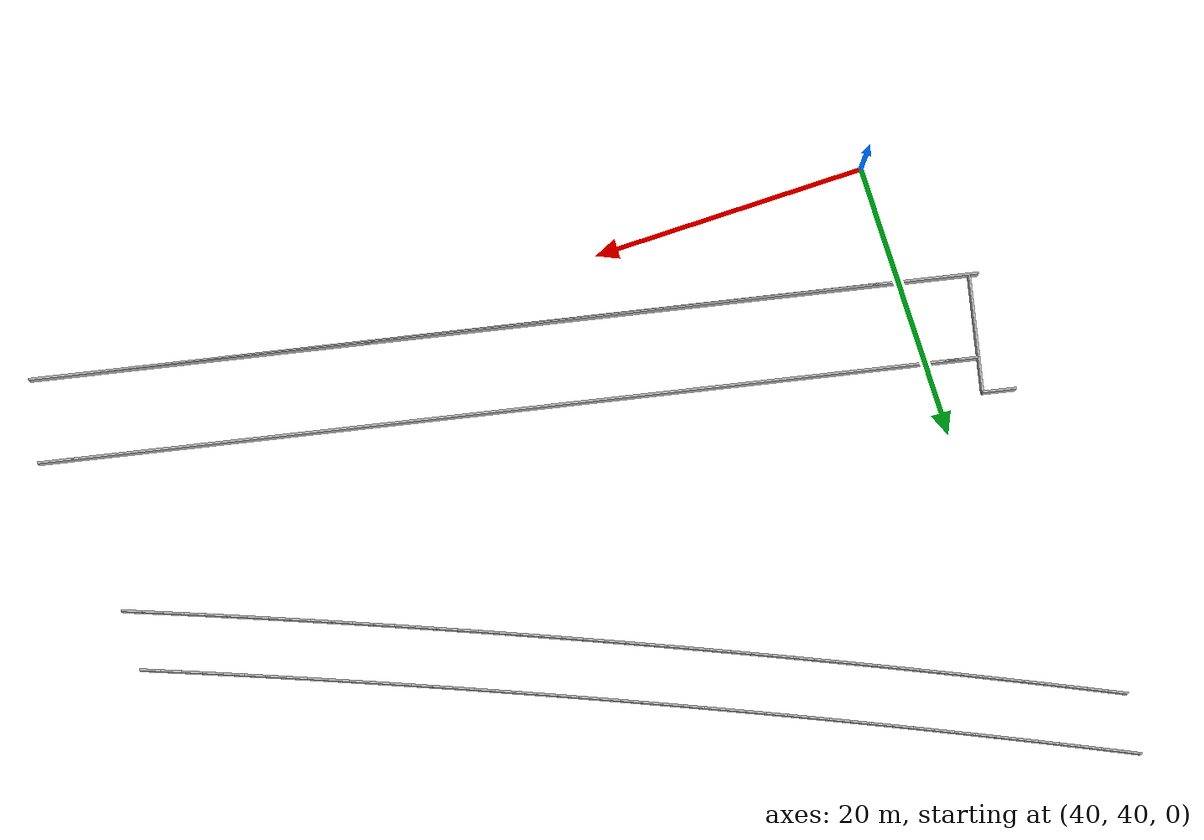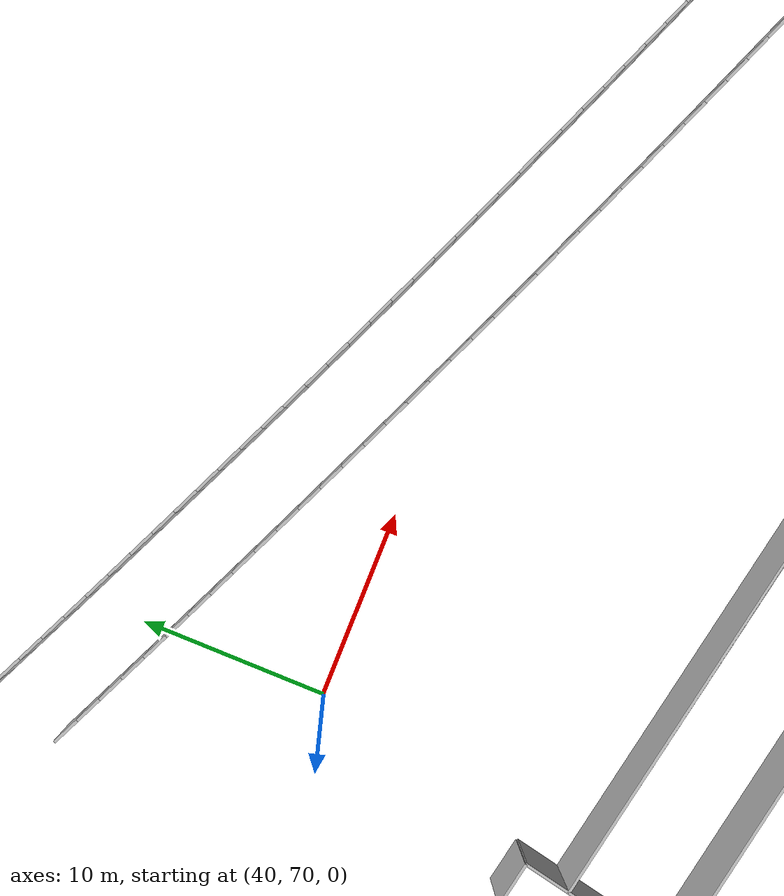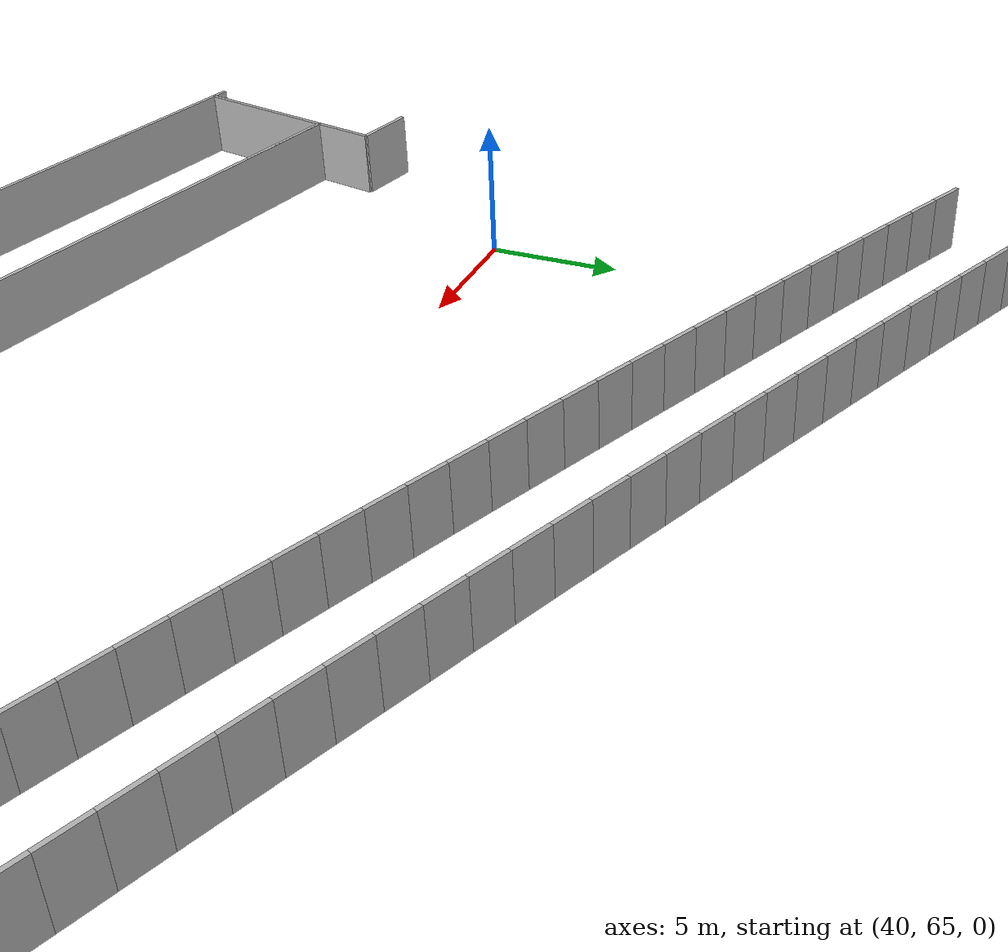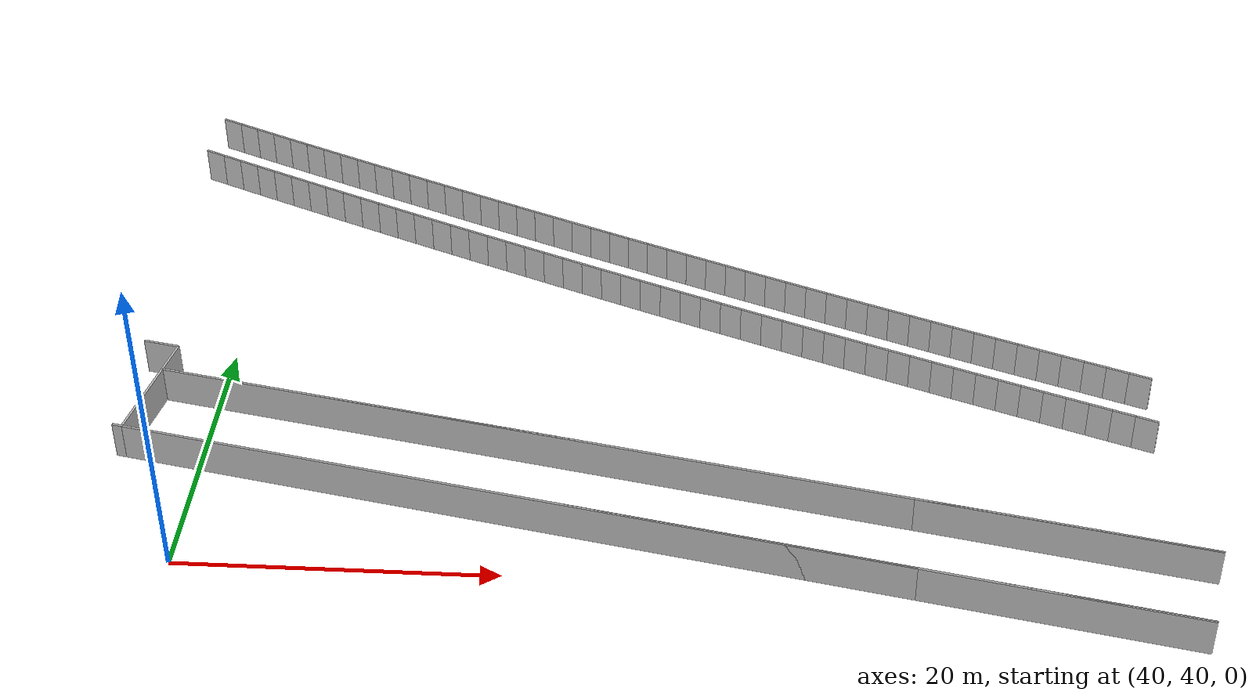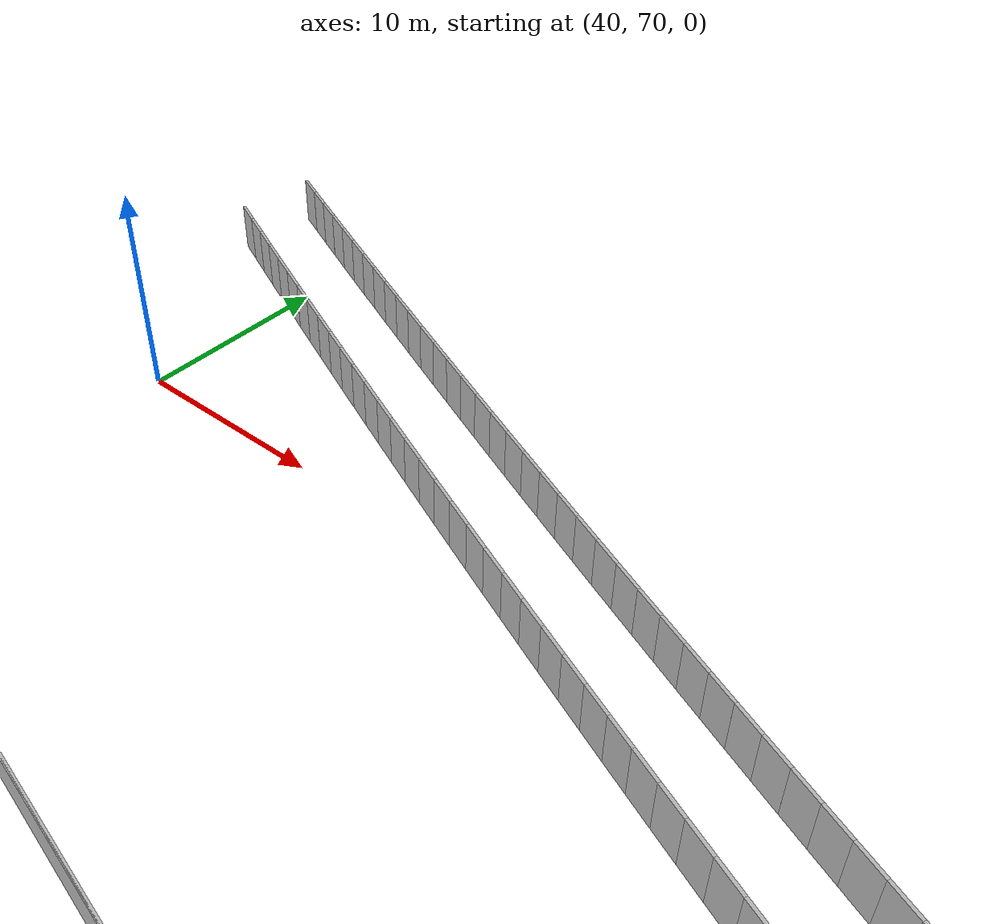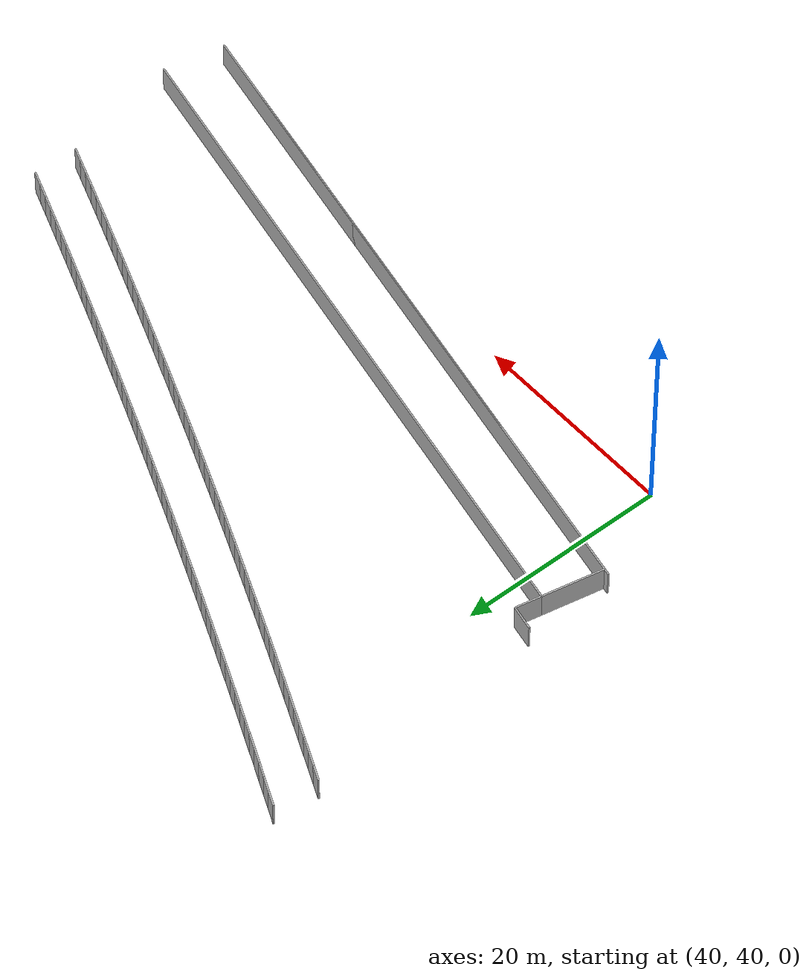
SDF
<sdf version="1.6">
 <model name="sps_0702">
  <static>1</static>
  <allow_auto_disable>0</allow_auto_disable>
  <link name="Wall22">
   <collision name="collision"><geometry><box><size>2.40359 0.15 2.5</size></box></geometry></collision>
   <visual name="visual">
    <geometry><box><size>2.40359 0.15 2.5</size></box></geometry>
    <transparency>0.0</transparency>
   </visual>
   <pose>35.6465 58.1709 1.25 0 -0 2.9385</pose>
  </link>
  <link name="Wall24">
   <collision name="collision"><geometry><box><size>17.1475 0.15 2.5</size></box></geometry></collision>
   <visual name="visual">
    <geometry><box><size>17.1475 0.15 2.5</size></box></geometry>
    <transparency>0.0</transparency>
   </visual>
   <pose>92.8679 37.7551 1.25 0 -0 2.93901</pose>
  </link>
  <link name="Wall25">
   <collision name="collision"><geometry><box><size>51.0438 0.15 2.5</size></box></geometry></collision>
   <visual name="visual">
    <geometry><box><size>51.0438 0.15 2.5</size></box></geometry>
    <transparency>0.0</transparency>
   </visual>
   <pose>59.4694 44.6151 1.25 0 -0 2.93901</pose>
  </link>
  <link name="Wall525">
   <collision name="collision"><geometry><box><size>2.50024 0.15 2.5</size></box></geometry></collision>
   <visual name="visual">
    <geometry><box><size>2.50024 0.15 2.5</size></box></geometry>
    <transparency>0.0</transparency>
   </visual>
   <pose>36.5713 56.7041 1.25 0 -0 1.36759</pose>
  </link>
  <link name="Wall609">
   <collision name="collision"><geometry><box><size>18.3831 0.15 2.5</size></box></geometry></collision>
   <visual name="visual">
    <geometry><box><size>18.3831 0.15 2.5</size></box></geometry>
    <transparency>0.0</transparency>
   </visual>
   <pose>93.4734 43.7539 1.25 0 -0 2.93924</pose>
  </link>
  <link name="Wall610">
   <collision name="collision"><geometry><box><size>49.1533 0.15 2.5</size></box></geometry></collision>
   <visual name="visual">
    <geometry><box><size>49.1533 0.15 2.5</size></box></geometry>
    <transparency>0.0</transparency>
   </visual>
   <pose>60.3942 50.5404 1.25 0 -0 2.93924</pose>
  </link>
  <link name="Wall1000">
   <collision name="collision"><geometry><box><size>67.5356 0.15 2.5</size></box></geometry></collision>
   <visual name="visual">
    <geometry><box><size>67.5356 0.15 2.5</size></box></geometry>
    <transparency>0.0</transparency>
   </visual>
   <pose>68.189 42.824 1.25 0 -0 2.93902</pose>
  </link>
  <link name="Wall1001">
   <collision name="collision"><geometry><box><size>5.98487 0.15 2.5</size></box></geometry></collision>
   <visual name="visual">
    <geometry><box><size>5.98487 0.15 2.5</size></box></geometry>
    <transparency>0.0</transparency>
   </visual>
   <pose>35.7154 52.5488 1.25 0 -0 1.36766</pose>
  </link>
  <link name="Wall1002">
   <collision name="collision"><geometry><box><size>67.5363 0.15 2.5</size></box></geometry></collision>
   <visual name="visual">
    <geometry><box><size>67.5363 0.15 2.5</size></box></geometry>
    <transparency>0.0</transparency>
   </visual>
   <pose>69.3982 48.6932 1.25 0 0 -0.202351</pose>
  </link>
  <link name="Wall8775">
   <collision name="collision"><geometry><box><size>1.49881 0.15 2.5</size></box></geometry></collision>
   <visual name="visual">
    <geometry><box><size>1.49881 0.15 2.5</size></box></geometry>
    <transparency>0.0</transparency>
   </visual>
   <pose>34.3608 81.2425 1.25 0 0 -0.433503</pose>
  </link>
  <link name="Wall8776">
   <collision name="collision"><geometry><box><size>1.49901 0.15 2.5</size></box></geometry></collision>
   <visual name="visual">
    <geometry><box><size>1.49901 0.15 2.5</size></box></geometry>
    <transparency>0.0</transparency>
   </visual>
   <pose>35.7215 80.6138 1.25 0 0 -0.43214</pose>
  </link>
  <link name="Wall8777">
   <collision name="collision"><geometry><box><size>1.49887 0.15 2.5</size></box></geometry></collision>
   <visual name="visual">
    <geometry><box><size>1.49887 0.15 2.5</size></box></geometry>
    <transparency>0.0</transparency>
   </visual>
   <pose>37.0832 79.9872 1.25 0 0 -0.430388</pose>
  </link>
  <link name="Wall8778">
   <collision name="collision"><geometry><box><size>1.49893 0.15 2.5</size></box></geometry></collision>
   <visual name="visual">
    <geometry><box><size>1.49893 0.15 2.5</size></box></geometry>
    <transparency>0.0</transparency>
   </visual>
   <pose>38.4459 79.3629 1.25 0 0 -0.428804</pose>
  </link>
  <link name="Wall8779">
   <collision name="collision"><geometry><box><size>1.49898 0.15 2.5</size></box></geometry></collision>
   <visual name="visual">
    <geometry><box><size>1.49898 0.15 2.5</size></box></geometry>
    <transparency>0.0</transparency>
   </visual>
   <pose>39.8096 78.7407 1.25 0 0 -0.427312</pose>
  </link>
  <link name="Wall8780">
   <collision name="collision"><geometry><box><size>1.49894 0.15 2.5</size></box></geometry></collision>
   <visual name="visual">
    <geometry><box><size>1.49894 0.15 2.5</size></box></geometry>
    <transparency>0.0</transparency>
   </visual>
   <pose>41.1742 78.1206 1.25 0 0 -0.42567</pose>
  </link>
  <link name="Wall8781">
   <collision name="collision"><geometry><box><size>1.49908 0.15 2.5</size></box></geometry></collision>
   <visual name="visual">
    <geometry><box><size>1.49908 0.15 2.5</size></box></geometry>
    <transparency>0.0</transparency>
   </visual>
   <pose>42.5399 77.5026 1.25 0 0 -0.424198</pose>
  </link>
  <link name="Wall8782">
   <collision name="collision"><geometry><box><size>1.49899 0.15 2.5</size></box></geometry></collision>
   <visual name="visual">
    <geometry><box><size>1.49899 0.15 2.5</size></box></geometry>
    <transparency>0.0</transparency>
   </visual>
   <pose>43.9066 76.8868 1.25 0 0 -0.422483</pose>
  </link>
  <link name="Wall8783">
   <collision name="collision"><geometry><box><size>1.49894 0.15 2.5</size></box></geometry></collision>
   <visual name="visual">
    <geometry><box><size>1.49894 0.15 2.5</size></box></geometry>
    <transparency>0.0</transparency>
   </visual>
   <pose>45.2743 76.2732 1.25 0 0 -0.421023</pose>
  </link>
  <link name="Wall8784">
   <collision name="collision"><geometry><box><size>1.49878 0.15 2.5</size></box></geometry></collision>
   <visual name="visual">
    <geometry><box><size>1.49878 0.15 2.5</size></box></geometry>
    <transparency>0.0</transparency>
   </visual>
   <pose>46.6428 75.6618 1.25 0 0 -0.419287</pose>
  </link>
  <link name="Wall8785">
   <collision name="collision"><geometry><box><size>1.49894 0.15 2.5</size></box></geometry></collision>
   <visual name="visual">
    <geometry><box><size>1.49894 0.15 2.5</size></box></geometry>
    <transparency>0.0</transparency>
   </visual>
   <pose>48.0122 75.0526 1.25 0 0 -0.417815</pose>
  </link>
  <link name="Wall8786">
   <collision name="collision"><geometry><box><size>1.49883 0.15 2.5</size></box></geometry></collision>
   <visual name="visual">
    <geometry><box><size>1.49883 0.15 2.5</size></box></geometry>
    <transparency>0.0</transparency>
   </visual>
   <pose>49.3827 74.4455 1.25 0 0 -0.416244</pose>
  </link>
  <link name="Wall8787">
   <collision name="collision"><geometry><box><size>1.49908 0.15 2.5</size></box></geometry></collision>
   <visual name="visual">
    <geometry><box><size>1.49908 0.15 2.5</size></box></geometry>
    <transparency>0.0</transparency>
   </visual>
   <pose>50.7541 73.8405 1.25 0 0 -0.414702</pose>
  </link>
  <link name="Wall8788">
   <collision name="collision"><geometry><box><size>1.49899 0.15 2.5</size></box></geometry></collision>
   <visual name="visual">
    <geometry><box><size>1.49899 0.15 2.5</size></box></geometry>
    <transparency>0.0</transparency>
   </visual>
   <pose>52.1266 73.2377 1.25 0 0 -0.412949</pose>
  </link>
  <link name="Wall8789">
   <collision name="collision"><geometry><box><size>1.49893 0.15 2.5</size></box></geometry></collision>
   <visual name="visual">
    <geometry><box><size>1.49893 0.15 2.5</size></box></geometry>
    <transparency>0.0</transparency>
   </visual>
   <pose>53.5 72.6371 1.25 0 0 -0.411543</pose>
  </link>
  <link name="Wall8790">
   <collision name="collision"><geometry><box><size>1.49901 0.15 2.5</size></box></geometry></collision>
   <visual name="visual">
    <geometry><box><size>1.49901 0.15 2.5</size></box></geometry>
    <transparency>0.0</transparency>
   </visual>
   <pose>54.8743 72.0386 1.25 0 0 -0.409923</pose>
  </link>
  <link name="Wall8791">
   <collision name="collision"><geometry><box><size>1.49903 0.15 2.5</size></box></geometry></collision>
   <visual name="visual">
    <geometry><box><size>1.49903 0.15 2.5</size></box></geometry>
    <transparency>0.0</transparency>
   </visual>
   <pose>56.2496 71.4423 1.25 0 0 -0.408319</pose>
  </link>
  <link name="Wall8792">
   <collision name="collision"><geometry><box><size>1.49886 0.15 2.5</size></box></geometry></collision>
   <visual name="visual">
    <geometry><box><size>1.49886 0.15 2.5</size></box></geometry>
    <transparency>0.0</transparency>
   </visual>
   <pose>57.6258 70.8482 1.25 0 0 -0.406726</pose>
  </link>
  <link name="Wall8793">
   <collision name="collision"><geometry><box><size>1.49897 0.15 2.5</size></box></geometry></collision>
   <visual name="visual">
    <geometry><box><size>1.49897 0.15 2.5</size></box></geometry>
    <transparency>0.0</transparency>
   </visual>
   <pose>59.0029 70.2563 1.25 0 0 -0.405143</pose>
  </link>
  <link name="Wall8794">
   <collision name="collision"><geometry><box><size>1.49878 0.15 2.5</size></box></geometry></collision>
   <visual name="visual">
    <geometry><box><size>1.49878 0.15 2.5</size></box></geometry>
    <transparency>0.0</transparency>
   </visual>
   <pose>60.3809 69.6666 1.25 0 0 -0.403603</pose>
  </link>
  <link name="Wall8795">
   <collision name="collision"><geometry><box><size>1.49891 0.15 2.5</size></box></geometry></collision>
   <visual name="visual">
    <geometry><box><size>1.49891 0.15 2.5</size></box></geometry>
    <transparency>0.0</transparency>
   </visual>
   <pose>61.7598 69.0791 1.25 0 0 -0.40193</pose>
  </link>
  <link name="Wall8796">
   <collision name="collision"><geometry><box><size>1.49899 0.15 2.5</size></box></geometry></collision>
   <visual name="visual">
    <geometry><box><size>1.49899 0.15 2.5</size></box></geometry>
    <transparency>0.0</transparency>
   </visual>
   <pose>63.1397 68.4937 1.25 0 0 -0.400492</pose>
  </link>
  <link name="Wall8797">
   <collision name="collision"><geometry><box><size>1.49899 0.15 2.5</size></box></geometry></collision>
   <visual name="visual">
    <geometry><box><size>1.49899 0.15 2.5</size></box></geometry>
    <transparency>0.0</transparency>
   </visual>
   <pose>64.5206 67.9105 1.25 0 0 -0.398722</pose>
  </link>
  <link name="Wall8798">
   <collision name="collision"><geometry><box><size>1.49897 0.15 2.5</size></box></geometry></collision>
   <visual name="visual">
    <geometry><box><size>1.49897 0.15 2.5</size></box></geometry>
    <transparency>0.0</transparency>
   </visual>
   <pose>65.9024 67.3295 1.25 0 0 -0.397316</pose>
  </link>
  <link name="Wall8799">
   <collision name="collision"><geometry><box><size>1.49895 0.15 2.5</size></box></geometry></collision>
   <visual name="visual">
    <geometry><box><size>1.49895 0.15 2.5</size></box></geometry>
    <transparency>0.0</transparency>
   </visual>
   <pose>67.2851 66.7507 1.25 0 0 -0.395599</pose>
  </link>
  <link name="Wall8800">
   <collision name="collision"><geometry><box><size>1.49901 0.15 2.5</size></box></geometry></collision>
   <visual name="visual">
    <geometry><box><size>1.49901 0.15 2.5</size></box></geometry>
    <transparency>0.0</transparency>
   </visual>
   <pose>68.6687 66.174 1.25 0 0 -0.394215</pose>
  </link>
  <link name="Wall8801">
   <collision name="collision"><geometry><box><size>1.4989 0.15 2.5</size></box></geometry></collision>
   <visual name="visual">
    <geometry><box><size>1.4989 0.15 2.5</size></box></geometry>
    <transparency>0.0</transparency>
   </visual>
   <pose>70.0532 65.5995 1.25 0 0 -0.392439</pose>
  </link>
  <link name="Wall8802">
   <collision name="collision"><geometry><box><size>1.49899 0.15 2.5</size></box></geometry></collision>
   <visual name="visual">
    <geometry><box><size>1.49899 0.15 2.5</size></box></geometry>
    <transparency>0.0</transparency>
   </visual>
   <pose>71.4385 65.0272 1.25 0 0 -0.391092</pose>
  </link>
  <link name="Wall8803">
   <collision name="collision"><geometry><box><size>1.49895 0.15 2.5</size></box></geometry></collision>
   <visual name="visual">
    <geometry><box><size>1.49895 0.15 2.5</size></box></geometry>
    <transparency>0.0</transparency>
   </visual>
   <pose>72.8249 64.4571 1.25 0 0 -0.38921</pose>
  </link>
  <link name="Wall8804">
   <collision name="collision"><geometry><box><size>1.49886 0.15 2.5</size></box></geometry></collision>
   <visual name="visual">
    <geometry><box><size>1.49886 0.15 2.5</size></box></geometry>
    <transparency>0.0</transparency>
   </visual>
   <pose>74.2121 63.8893 1.25 0 0 -0.387781</pose>
  </link>
  <link name="Wall8805">
   <collision name="collision"><geometry><box><size>1.49902 0.15 2.5</size></box></geometry></collision>
   <visual name="visual">
    <geometry><box><size>1.49902 0.15 2.5</size></box></geometry>
    <transparency>0.0</transparency>
   </visual>
   <pose>75.6002 63.3236 1.25 0 0 -0.3862</pose>
  </link>
  <link name="Wall8806">
   <collision name="collision"><geometry><box><size>1.4989 0.15 2.5</size></box></geometry></collision>
   <visual name="visual">
    <geometry><box><size>1.4989 0.15 2.5</size></box></geometry>
    <transparency>0.0</transparency>
   </visual>
   <pose>76.9892 62.7601 1.25 0 0 -0.384605</pose>
  </link>
  <link name="Wall8807">
   <collision name="collision"><geometry><box><size>1.49908 0.15 2.5</size></box></geometry></collision>
   <visual name="visual">
    <geometry><box><size>1.49908 0.15 2.5</size></box></geometry>
    <transparency>0.0</transparency>
   </visual>
   <pose>78.3791 62.1987 1.25 0 0 -0.383153</pose>
  </link>
  <link name="Wall8808">
   <collision name="collision"><geometry><box><size>1.49889 0.15 2.5</size></box></geometry></collision>
   <visual name="visual">
    <geometry><box><size>1.49889 0.15 2.5</size></box></geometry>
    <transparency>0.0</transparency>
   </visual>
   <pose>79.7699 61.6396 1.25 0 0 -0.381315</pose>
  </link>
  <link name="Wall8809">
   <collision name="collision"><geometry><box><size>1.49882 0.15 2.5</size></box></geometry></collision>
   <visual name="visual">
    <geometry><box><size>1.49882 0.15 2.5</size></box></geometry>
    <transparency>0.0</transparency>
   </visual>
   <pose>81.1615 61.0828 1.25 0 0 -0.379886</pose>
  </link>
  <link name="Wall8810">
   <collision name="collision"><geometry><box><size>1.49897 0.15 2.5</size></box></geometry></collision>
   <visual name="visual">
    <geometry><box><size>1.49897 0.15 2.5</size></box></geometry>
    <transparency>0.0</transparency>
   </visual>
   <pose>82.5539 60.5281 1.25 0 0 -0.378268</pose>
  </link>
  <link name="Wall8811">
   <collision name="collision"><geometry><box><size>1.49897 0.15 2.5</size></box></geometry></collision>
   <visual name="visual">
    <geometry><box><size>1.49897 0.15 2.5</size></box></geometry>
    <transparency>0.0</transparency>
   </visual>
   <pose>83.9473 59.9755 1.25 0 0 -0.376824</pose>
  </link>
  <link name="Wall8812">
   <collision name="collision"><geometry><box><size>1.49908 0.15 2.5</size></box></geometry></collision>
   <visual name="visual">
    <geometry><box><size>1.49908 0.15 2.5</size></box></geometry>
    <transparency>0.0</transparency>
   </visual>
   <pose>85.3417 59.4251 1.25 0 0 -0.375131</pose>
  </link>
  <link name="Wall8813">
   <collision name="collision"><geometry><box><size>1.49894 0.15 2.5</size></box></geometry></collision>
   <visual name="visual">
    <geometry><box><size>1.49894 0.15 2.5</size></box></geometry>
    <transparency>0.0</transparency>
   </visual>
   <pose>86.7369 58.877 1.25 0 0 -0.37355</pose>
  </link>
  <link name="Wall8814">
   <collision name="collision"><geometry><box><size>1.49871 0.15 2.5</size></box></geometry></collision>
   <visual name="visual">
    <geometry><box><size>1.49871 0.15 2.5</size></box></geometry>
    <transparency>0.0</transparency>
   </visual>
   <pose>88.1327 58.3311 1.25 0 0 -0.372036</pose>
  </link>
  <link name="Wall8815">
   <collision name="collision"><geometry><box><size>1.49905 0.15 2.5</size></box></geometry></collision>
   <visual name="visual">
    <geometry><box><size>1.49905 0.15 2.5</size></box></geometry>
    <transparency>0.0</transparency>
   </visual>
   <pose>89.5295 57.7874 1.25 0 0 -0.370375</pose>
  </link>
  <link name="Wall8816">
   <collision name="collision"><geometry><box><size>1.4988 0.15 2.5</size></box></geometry></collision>
   <visual name="visual">
    <geometry><box><size>1.4988 0.15 2.5</size></box></geometry>
    <transparency>0.0</transparency>
   </visual>
   <pose>90.9272 57.2459 1.25 0 0 -0.368823</pose>
  </link>
  <link name="Wall8817">
   <collision name="collision"><geometry><box><size>1.49894 0.15 2.5</size></box></geometry></collision>
   <visual name="visual">
    <geometry><box><size>1.49894 0.15 2.5</size></box></geometry>
    <transparency>0.0</transparency>
   </visual>
   <pose>92.3257 56.7066 1.25 0 0 -0.367259</pose>
  </link>
  <link name="Wall8818">
   <collision name="collision"><geometry><box><size>1.49913 0.15 2.5</size></box></geometry></collision>
   <visual name="visual">
    <geometry><box><size>1.49913 0.15 2.5</size></box></geometry>
    <transparency>0.0</transparency>
   </visual>
   <pose>93.7252 56.1695 1.25 0 0 -0.365642</pose>
  </link>
  <link name="Wall8819">
   <collision name="collision"><geometry><box><size>1.49885 0.15 2.5</size></box></geometry></collision>
   <visual name="visual">
    <geometry><box><size>1.49885 0.15 2.5</size></box></geometry>
    <transparency>0.0</transparency>
   </visual>
   <pose>95.1255 55.6346 1.25 0 0 -0.364142</pose>
  </link>
  <link name="Wall8820">
   <collision name="collision"><geometry><box><size>1.49904 0.15 2.5</size></box></geometry></collision>
   <visual name="visual">
    <geometry><box><size>1.49904 0.15 2.5</size></box></geometry>
    <transparency>0.0</transparency>
   </visual>
   <pose>96.5266 55.1019 1.25 0 0 -0.362526</pose>
  </link>
  <link name="Wall8821">
   <collision name="collision"><geometry><box><size>1.49886 0.15 2.5</size></box></geometry></collision>
   <visual name="visual">
    <geometry><box><size>1.49886 0.15 2.5</size></box></geometry>
    <transparency>0.0</transparency>
   </visual>
   <pose>97.9286 54.5716 1.25 0 0 -0.360701</pose>
  </link>
  <link name="Wall8822">
   <collision name="collision"><geometry><box><size>1.49895 0.15 2.5</size></box></geometry></collision>
   <visual name="visual">
    <geometry><box><size>1.49895 0.15 2.5</size></box></geometry>
    <transparency>0.0</transparency>
   </visual>
   <pose>99.3314 54.0435 1.25 0 0 -0.359371</pose>
  </link>
  <link name="Wall9855">
   <collision name="collision"><geometry><box><size>1.49234 0.15 2.5</size></box></geometry></collision>
   <visual name="visual">
    <geometry><box><size>1.49234 0.15 2.5</size></box></geometry>
    <transparency>0.0</transparency>
   </visual>
   <pose>34.7463 85.6277 1.25 0 0 -0.435239</pose>
  </link>
  <link name="Wall9856">
   <collision name="collision"><geometry><box><size>1.49244 0.15 2.5</size></box></geometry></collision>
   <visual name="visual">
    <geometry><box><size>1.49244 0.15 2.5</size></box></geometry>
    <transparency>0.0</transparency>
   </visual>
   <pose>36.1001 84.9996 1.25 0 0 -0.433539</pose>
  </link>
  <link name="Wall9857">
   <collision name="collision"><geometry><box><size>1.49257 0.15 2.5</size></box></geometry></collision>
   <visual name="visual">
    <geometry><box><size>1.49257 0.15 2.5</size></box></geometry>
    <transparency>0.0</transparency>
   </visual>
   <pose>37.4549 84.3736 1.25 0 0 -0.432059</pose>
  </link>
  <link name="Wall9858">
   <collision name="collision"><geometry><box><size>1.49229 0.15 2.5</size></box></geometry></collision>
   <visual name="visual">
    <geometry><box><size>1.49229 0.15 2.5</size></box></geometry>
    <transparency>0.0</transparency>
   </visual>
   <pose>38.8108 83.7498 1.25 0 0 -0.430388</pose>
  </link>
  <link name="Wall9859">
   <collision name="collision"><geometry><box><size>1.49234 0.15 2.5</size></box></geometry></collision>
   <visual name="visual">
    <geometry><box><size>1.49234 0.15 2.5</size></box></geometry>
    <transparency>0.0</transparency>
   </visual>
   <pose>40.1674 83.1282 1.25 0 0 -0.428889</pose>
  </link>
  <link name="Wall9860">
   <collision name="collision"><geometry><box><size>1.49254 0.15 2.5</size></box></geometry></collision>
   <visual name="visual">
    <geometry><box><size>1.49254 0.15 2.5</size></box></geometry>
    <transparency>0.0</transparency>
   </visual>
   <pose>41.5252 82.5087 1.25 0 0 -0.42721</pose>
  </link>
  <link name="Wall9861">
   <collision name="collision"><geometry><box><size>1.49248 0.15 2.5</size></box></geometry></collision>
   <visual name="visual">
    <geometry><box><size>1.49248 0.15 2.5</size></box></geometry>
    <transparency>0.0</transparency>
   </visual>
   <pose>42.8841 81.8913 1.25 0 0 -0.425744</pose>
  </link>
  <link name="Wall9862">
   <collision name="collision"><geometry><box><size>1.49241 0.15 2.5</size></box></geometry></collision>
   <visual name="visual">
    <geometry><box><size>1.49241 0.15 2.5</size></box></geometry>
    <transparency>0.0</transparency>
   </visual>
   <pose>44.2438 81.276 1.25 0 0 -0.42415</pose>
  </link>
  <link name="Wall9863">
   <collision name="collision"><geometry><box><size>1.49229 0.15 2.5</size></box></geometry></collision>
   <visual name="visual">
    <geometry><box><size>1.49229 0.15 2.5</size></box></geometry>
    <transparency>0.0</transparency>
   </visual>
   <pose>45.6044 80.6629 1.25 0 0 -0.422572</pose>
  </link>
  <link name="Wall9864">
   <collision name="collision"><geometry><box><size>1.49245 0.15 2.5</size></box></geometry></collision>
   <visual name="visual">
    <geometry><box><size>1.49245 0.15 2.5</size></box></geometry>
    <transparency>0.0</transparency>
   </visual>
   <pose>46.966 80.052 1.25 0 0 -0.420911</pose>
  </link>
  <link name="Wall9865">
   <collision name="collision"><geometry><box><size>1.49228 0.15 2.5</size></box></geometry></collision>
   <visual name="visual">
    <geometry><box><size>1.49228 0.15 2.5</size></box></geometry>
    <transparency>0.0</transparency>
   </visual>
   <pose>48.3285 79.4433 1.25 0 0 -0.41935</pose>
  </link>
  <link name="Wall9866">
   <collision name="collision"><geometry><box><size>1.49257 0.15 2.5</size></box></geometry></collision>
   <visual name="visual">
    <geometry><box><size>1.49257 0.15 2.5</size></box></geometry>
    <transparency>0.0</transparency>
   </visual>
   <pose>49.6921 78.8367 1.25 0 0 -0.417784</pose>
  </link>
  <link name="Wall9867">
   <collision name="collision"><geometry><box><size>1.49217 0.15 2.5</size></box></geometry></collision>
   <visual name="visual">
    <geometry><box><size>1.49217 0.15 2.5</size></box></geometry>
    <transparency>0.0</transparency>
   </visual>
   <pose>51.0566 78.2323 1.25 0 0 -0.41616</pose>
  </link>
  <link name="Wall9868">
   <collision name="collision"><geometry><box><size>1.49254 0.15 2.5</size></box></geometry></collision>
   <visual name="visual">
    <geometry><box><size>1.49254 0.15 2.5</size></box></geometry>
    <transparency>0.0</transparency>
   </visual>
   <pose>52.422 77.63 1.25 0 0 -0.414708</pose>
  </link>
  <link name="Wall9869">
   <collision name="collision"><geometry><box><size>1.49231 0.15 2.5</size></box></geometry></collision>
   <visual name="visual">
    <geometry><box><size>1.49231 0.15 2.5</size></box></geometry>
    <transparency>0.0</transparency>
   </visual>
   <pose>53.7885 77.0298 1.25 0 0 -0.413033</pose>
  </link>
  <link name="Wall9870">
   <collision name="collision"><geometry><box><size>1.4924 0.15 2.5</size></box></geometry></collision>
   <visual name="visual">
    <geometry><box><size>1.4924 0.15 2.5</size></box></geometry>
    <transparency>0.0</transparency>
   </visual>
   <pose>55.1558 76.4318 1.25 0 0 -0.411535</pose>
  </link>
  <link name="Wall9871">
   <collision name="collision"><geometry><box><size>1.49244 0.15 2.5</size></box></geometry></collision>
   <visual name="visual">
    <geometry><box><size>1.49244 0.15 2.5</size></box></geometry>
    <transparency>0.0</transparency>
   </visual>
   <pose>56.5241 75.8359 1.25 0 0 -0.409961</pose>
  </link>
  <link name="Wall9872">
   <collision name="collision"><geometry><box><size>1.4925 0.15 2.5</size></box></geometry></collision>
   <visual name="visual">
    <geometry><box><size>1.4925 0.15 2.5</size></box></geometry>
    <transparency>0.0</transparency>
   </visual>
   <pose>57.8934 75.2422 1.25 0 0 -0.408296</pose>
  </link>
  <link name="Wall9873">
   <collision name="collision"><geometry><box><size>1.49228 0.15 2.5</size></box></geometry></collision>
   <visual name="visual">
    <geometry><box><size>1.49228 0.15 2.5</size></box></geometry>
    <transparency>0.0</transparency>
   </visual>
   <pose>59.2636 74.6508 1.25 0 0 -0.406621</pose>
  </link>
  <link name="Wall9874">
   <collision name="collision"><geometry><box><size>1.49246 0.15 2.5</size></box></geometry></collision>
   <visual name="visual">
    <geometry><box><size>1.49246 0.15 2.5</size></box></geometry>
    <transparency>0.0</transparency>
   </visual>
   <pose>60.6347 74.0615 1.25 0 0 -0.405235</pose>
  </link>
  <link name="Wall9875">
   <collision name="collision"><geometry><box><size>1.49255 0.15 2.5</size></box></geometry></collision>
   <visual name="visual">
    <geometry><box><size>1.49255 0.15 2.5</size></box></geometry>
    <transparency>0.0</transparency>
   </visual>
   <pose>62.0068 73.4742 1.25 0 0 -0.403608</pose>
  </link>
  <link name="Wall9876">
   <collision name="collision"><geometry><box><size>1.49229 0.15 2.5</size></box></geometry></collision>
   <visual name="visual">
    <geometry><box><size>1.49229 0.15 2.5</size></box></geometry>
    <transparency>0.0</transparency>
   </visual>
   <pose>63.3798 72.8892 1.25 0 0 -0.401949</pose>
  </link>
  <link name="Wall9877">
   <collision name="collision"><geometry><box><size>1.49229 0.15 2.5</size></box></geometry></collision>
   <visual name="visual">
    <geometry><box><size>1.49229 0.15 2.5</size></box></geometry>
    <transparency>0.0</transparency>
   </visual>
   <pose>64.7535 72.3064 1.25 0 0 -0.400483</pose>
  </link>
  <link name="Wall9878">
   <collision name="collision"><geometry><box><size>1.49258 0.15 2.5</size></box></geometry></collision>
   <visual name="visual">
    <geometry><box><size>1.49258 0.15 2.5</size></box></geometry>
    <transparency>0.0</transparency>
   </visual>
   <pose>66.1283 71.7257 1.25 0 0 -0.398846</pose>
  </link>
  <link name="Wall9879">
   <collision name="collision"><geometry><box><size>1.49221 0.15 2.5</size></box></geometry></collision>
   <visual name="visual">
    <geometry><box><size>1.49221 0.15 2.5</size></box></geometry>
    <transparency>0.0</transparency>
   </visual>
   <pose>67.5041 71.1472 1.25 0 0 -0.397308</pose>
  </link>
  <link name="Wall9880">
   <collision name="collision"><geometry><box><size>1.49249 0.15 2.5</size></box></geometry></collision>
   <visual name="visual">
    <geometry><box><size>1.49249 0.15 2.5</size></box></geometry>
    <transparency>0.0</transparency>
   </visual>
   <pose>68.8806 70.5709 1.25 0 0 -0.395634</pose>
  </link>
  <link name="Wall9881">
   <collision name="collision"><geometry><box><size>1.49238 0.15 2.5</size></box></geometry></collision>
   <visual name="visual">
    <geometry><box><size>1.49238 0.15 2.5</size></box></geometry>
    <transparency>0.0</transparency>
   </visual>
   <pose>70.2582 69.9968 1.25 0 0 -0.394071</pose>
  </link>
  <link name="Wall9882">
   <collision name="collision"><geometry><box><size>1.49232 0.15 2.5</size></box></geometry></collision>
   <visual name="visual">
    <geometry><box><size>1.49232 0.15 2.5</size></box></geometry>
    <transparency>0.0</transparency>
   </visual>
   <pose>71.6366 69.4249 1.25 0 0 -0.392491</pose>
  </link>
  <link name="Wall9883">
   <collision name="collision"><geometry><box><size>1.4924 0.15 2.5</size></box></geometry></collision>
   <visual name="visual">
    <geometry><box><size>1.4924 0.15 2.5</size></box></geometry>
    <transparency>0.0</transparency>
   </visual>
   <pose>73.016 68.8551 1.25 0 0 -0.39101</pose>
  </link>
  <link name="Wall9884">
   <collision name="collision"><geometry><box><size>1.49245 0.15 2.5</size></box></geometry></collision>
   <visual name="visual">
    <geometry><box><size>1.49245 0.15 2.5</size></box></geometry>
    <transparency>0.0</transparency>
   </visual>
   <pose>74.3962 68.2875 1.25 0 0 -0.38927</pose>
  </link>
  <link name="Wall9885">
   <collision name="collision"><geometry><box><size>1.49248 0.15 2.5</size></box></geometry></collision>
   <visual name="visual">
    <geometry><box><size>1.49248 0.15 2.5</size></box></geometry>
    <transparency>0.0</transparency>
   </visual>
   <pose>75.7775 67.7221 1.25 0 0 -0.387804</pose>
  </link>
  <link name="Wall9886">
   <collision name="collision"><geometry><box><size>1.4925 0.15 2.5</size></box></geometry></collision>
   <visual name="visual">
    <geometry><box><size>1.4925 0.15 2.5</size></box></geometry>
    <transparency>0.0</transparency>
   </visual>
   <pose>77.1596 67.1588 1.25 0 0 -0.386209</pose>
  </link>
  <link name="Wall9887">
   <collision name="collision"><geometry><box><size>1.49224 0.15 2.5</size></box></geometry></collision>
   <visual name="visual">
    <geometry><box><size>1.49224 0.15 2.5</size></box></geometry>
    <transparency>0.0</transparency>
   </visual>
   <pose>78.5424 66.5977 1.25 0 0 -0.384691</pose>
  </link>
  <link name="Wall9888">
   <collision name="collision"><geometry><box><size>1.49255 0.15 2.5</size></box></geometry></collision>
   <visual name="visual">
    <geometry><box><size>1.49255 0.15 2.5</size></box></geometry>
    <transparency>0.0</transparency>
   </visual>
   <pose>79.9262 66.0388 1.25 0 0 -0.38302</pose>
  </link>
  <link name="Wall9889">
   <collision name="collision"><geometry><box><size>1.4923 0.15 2.5</size></box></geometry></collision>
   <visual name="visual">
    <geometry><box><size>1.4923 0.15 2.5</size></box></geometry>
    <transparency>0.0</transparency>
   </visual>
   <pose>81.3109 65.4821 1.25 0 0 -0.381501</pose>
  </link>
  <link name="Wall9890">
   <collision name="collision"><geometry><box><size>1.49254 0.15 2.5</size></box></geometry></collision>
   <visual name="visual">
    <geometry><box><size>1.49254 0.15 2.5</size></box></geometry>
    <transparency>0.0</transparency>
   </visual>
   <pose>82.6966 64.9277 1.25 0 0 -0.379717</pose>
  </link>
  <link name="Wall9891">
   <collision name="collision"><geometry><box><size>1.49231 0.15 2.5</size></box></geometry></collision>
   <visual name="visual">
    <geometry><box><size>1.49231 0.15 2.5</size></box></geometry>
    <transparency>0.0</transparency>
   </visual>
   <pose>84.0831 64.3755 1.25 0 0 -0.378327</pose>
  </link>
  <link name="Wall9892">
   <collision name="collision"><geometry><box><size>1.49244 0.15 2.5</size></box></geometry></collision>
   <visual name="visual">
    <geometry><box><size>1.49244 0.15 2.5</size></box></geometry>
    <transparency>0.0</transparency>
   </visual>
   <pose>85.4704 63.8254 1.25 0 0 -0.376664</pose>
  </link>
  <link name="Wall9893">
   <collision name="collision"><geometry><box><size>1.49246 0.15 2.5</size></box></geometry></collision>
   <visual name="visual">
    <geometry><box><size>1.49246 0.15 2.5</size></box></geometry>
    <transparency>0.0</transparency>
   </visual>
   <pose>86.8586 63.2774 1.25 0 0 -0.375251</pose>
  </link>
  <link name="Wall9894">
   <collision name="collision"><geometry><box><size>1.49233 0.15 2.5</size></box></geometry></collision>
   <visual name="visual">
    <geometry><box><size>1.49233 0.15 2.5</size></box></geometry>
    <transparency>0.0</transparency>
   </visual>
   <pose>88.2476 62.7316 1.25 0 0 -0.373572</pose>
  </link>
  <link name="Wall9895">
   <collision name="collision"><geometry><box><size>1.49244 0.15 2.5</size></box></geometry></collision>
   <visual name="visual">
    <geometry><box><size>1.49244 0.15 2.5</size></box></geometry>
    <transparency>0.0</transparency>
   </visual>
   <pose>89.6375 62.1881 1.25 0 0 -0.371963</pose>
  </link>
  <link name="Wall9896">
   <collision name="collision"><geometry><box><size>1.49236 0.15 2.5</size></box></geometry></collision>
   <visual name="visual">
    <geometry><box><size>1.49236 0.15 2.5</size></box></geometry>
    <transparency>0.0</transparency>
   </visual>
   <pose>91.0283 61.6468 1.25 0 0 -0.37036</pose>
  </link>
  <link name="Wall9897">
   <collision name="collision"><geometry><box><size>1.49256 0.15 2.5</size></box></geometry></collision>
   <visual name="visual">
    <geometry><box><size>1.49256 0.15 2.5</size></box></geometry>
    <transparency>0.0</transparency>
   </visual>
   <pose>92.4199 61.1077 1.25 0 0 -0.368774</pose>
  </link>
  <link name="Wall9898">
   <collision name="collision"><geometry><box><size>1.49234 0.15 2.5</size></box></geometry></collision>
   <visual name="visual">
    <geometry><box><size>1.49234 0.15 2.5</size></box></geometry>
    <transparency>0.0</transparency>
   </visual>
   <pose>93.8125 60.5708 1.25 0 0 -0.367253</pose>
  </link>
  <link name="Wall9899">
   <collision name="collision"><geometry><box><size>1.49228 0.15 2.5</size></box></geometry></collision>
   <visual name="visual">
    <geometry><box><size>1.49228 0.15 2.5</size></box></geometry>
    <transparency>0.0</transparency>
   </visual>
   <pose>95.2056 60.036 1.25 0 0 -0.365779</pose>
  </link>
  <link name="Wall9900">
   <collision name="collision"><geometry><box><size>1.49247 0.15 2.5</size></box></geometry></collision>
   <visual name="visual">
    <geometry><box><size>1.49247 0.15 2.5</size></box></geometry>
    <transparency>0.0</transparency>
   </visual>
   <pose>96.5998 59.5034 1.25 0 0 -0.364064</pose>
  </link>
  <link name="Wall9901">
   <collision name="collision"><geometry><box><size>1.49229 0.15 2.5</size></box></geometry></collision>
   <visual name="visual">
    <geometry><box><size>1.49229 0.15 2.5</size></box></geometry>
    <transparency>0.0</transparency>
   </visual>
   <pose>97.9948 58.9732 1.25 0 0 -0.362361</pose>
  </link>
  <link name="Wall9902">
   <collision name="collision"><geometry><box><size>1.49249 0.15 2.5</size></box></geometry></collision>
   <visual name="visual">
    <geometry><box><size>1.49249 0.15 2.5</size></box></geometry>
    <transparency>0.0</transparency>
   </visual>
   <pose>99.3906 58.4452 1.25 0 0 -0.360867</pose>
  </link>
 </model>
</sdf>
